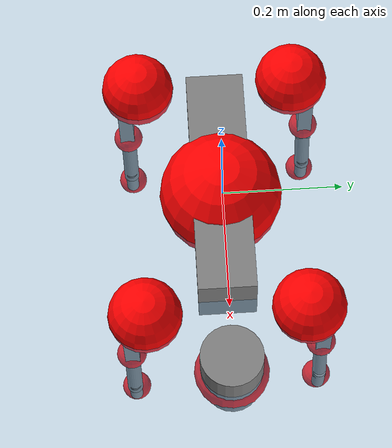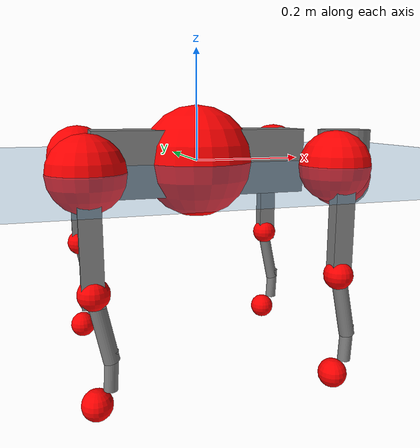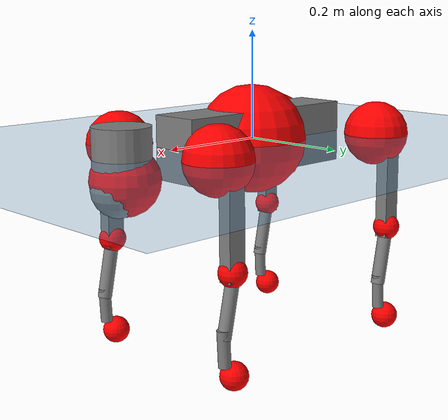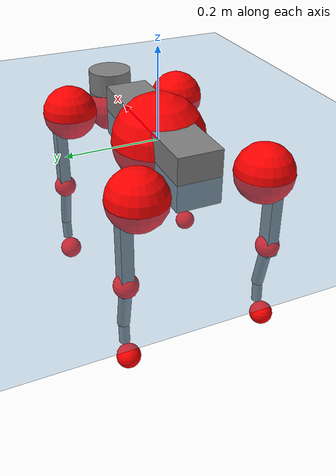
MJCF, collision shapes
<mujoco model="go2">
  <compiler angle="radian" assetdir="assets" balanceinertia="true" inertiafromgeom="false"/>

  <option timestep="0.005" density="1.2" viscosity="2e-05"/>

  <size nkey="1"/>

  <visual>
    <quality shadowsize="8192"/>
    <map shadowclip="0.5"/>
  </visual>

  <default>
    <default class="/">
      <geom contype="0" conaffinity="0" group="1" solref="-1000 -80"/>
      <site size="0.01 0.005 0.005" group="5"/>
      <general forcelimited="true" biastype="affine" gainprm="20" biasprm="0 -20 -0.5"/>
      <default class="go2">
        <joint armature="0.01" damping="0.01" frictionloss="0.2"/>
        <geom condim="1" margin="0.001"/>
        <default class="visual">
          <geom type="mesh" group="2"/>
        </default>
        <default class="collision">
          <geom group="3"/>
          <default class="foot">
            <geom size="0.022 0 0" condim="6" priority="1" friction="0.8 0.02 0.01" solimp="0.015 1 0.022"/>
          </default>
        </default>
        <default class="reward_collision_sphere">
          <geom group="5" rgba="1 0 0 1"/>
        </default>
      </default>
    </default>
  </default>

  <asset>
    <texture type="skybox" colorspace="auto" name="//unnamed_texture_0" builtin="gradient" rgb1="0.95 0.95 0.95" rgb2="0.95 0.95 0.95" width="100" height="600"/>
    <texture type="2d" colorspace="auto" name="texplane" builtin="checker" rgb1="0.345 0.575 0.748" rgb2="0.345 0.575 0.748" markrgb="1 1 1" width="512" height="512"/>
    <material name="MatPlane" class="/" texture="texplane" texuniform="true" texrepeat="2 2" specular="0.9"/>
    <material name="metal" class="/" rgba="0.9 0.95 0.95 1"/>
    <material name="black" class="/" rgba="0 0 0 1"/>
    <material name="white" class="/"/>
    <material name="gray" class="/" rgba="0.671705 0.692426 0.77427 1"/>
    <mesh name="base_0" class="/" file="base_0.obj"/>
    <mesh name="base_1" class="/" file="base_1.obj"/>
    <mesh name="base_2" class="/" file="base_2.obj"/>
    <mesh name="base_3" class="/" file="base_3.obj"/>
    <mesh name="base_4" class="/" file="base_4.obj"/>
    <mesh name="hip_0" class="/" file="hip_0.obj"/>
    <mesh name="hip_1" class="/" file="hip_1.obj"/>
    <mesh name="thigh_0" class="/" file="thigh_0.obj"/>
    <mesh name="thigh_1" class="/" file="thigh_1.obj"/>
    <mesh name="thigh_mirror_0" class="/" file="thigh_mirror_0.obj"/>
    <mesh name="thigh_mirror_1" class="/" file="thigh_mirror_1.obj"/>
    <mesh name="calf_0" class="/" file="calf_0.obj"/>
    <mesh name="calf_1" class="/" file="calf_1.obj"/>
    <mesh name="calf_mirror_0" class="/" file="calf_mirror_0.obj"/>
    <mesh name="calf_mirror_1" class="/" file="calf_mirror_1.obj"/>
    <mesh name="foot" class="/" file="foot.obj"/>
  </asset>

  <worldbody>
    <geom name="floor" class="/" size="100 100 0.125" type="plane" group="0" material="MatPlane"/>
    <light name="toplight_shadow" class="/" pos="0 0 5" dir="0.0990148 0.0990148 -0.990148" type="directional" ambient="0.04 0.04 0.04" diffuse="0.55 0.55 0.55" specular="0.12 0.12 0.12"/>
    <light name="toplight_fill" class="/" pos="0 0 5" dir="0.0990148 0.0990148 -0.990148" type="directional" castshadow="false" ambient="0.04 0.04 0.04" diffuse="0.3 0.3 0.3" specular="0.08 0.08 0.08"/>
    <body name="trunk" childclass="go2" pos="-0.000514927 -0.00236943 -0.000964257" quat="1 -6.06825e-05 1.7648e-05 -1.61831e-05">
      <inertial pos="0.0241112 -0.00225324 -0.00481128" quat="-0.00140466 0.713649 -0.00205363 0.700499" mass="7.22856" diaginertia="0.142158 0.176916 0.0113321"/>
      <joint name="//unnamed_joint_0" type="free" armature="0" damping="0" frictionloss="0"/>
      <geom name="//unnamed_geom_1" class="visual" material="black" mesh="base_0"/>
      <geom name="//unnamed_geom_2" class="visual" material="black" mesh="base_1"/>
      <geom name="//unnamed_geom_3" class="visual" material="black" mesh="base_2"/>
      <geom name="//unnamed_geom_4" class="visual" material="white" mesh="base_3"/>
      <geom name="//unnamed_geom_5" class="visual" material="gray" mesh="base_4"/>
      <geom name="trunk_1" class="collision" size="0.191484 0.0475911 0.0580255" type="box"/>
      <geom name="trunk_2" class="collision" size="0.0508995 0.0458096" pos="0.303663 0 0.00857898" type="cylinder"/>
      <geom name="trunk_3" class="collision" size="0.0478455" pos="0.312187 0 -0.0514739"/>
      <geom name="//unnamed_geom_9" class="reward_collision_sphere" size="0.101799"/>
      <geom name="//unnamed_geom_10" class="reward_collision_sphere" size="0.0610794" pos="0.298335 0 -0.0386054"/>
      <site name="imu" pos="-0.0148444 0.0141203 0.024431" size="0.0101799"/>
      <camera name="track" pos="0 -2.26118 0" quat="0.707107 0.707107 0 0" mode="trackcom"/>
      <camera name="ego_camera" pos="0.332431 0 0.0386054" quat="-0.5 -0.5 0.5 0.5"/>
      <body name="FL_hip" pos="0.208414 0.0525184 0.000981546" quat="1 -4.7502e-05 0.000411723 0.00083093">
        <inertial pos="-0.00541949 0.00227967 0.00246176" quat="0.49825 0.495576 0.506485 0.499625" mass="0.69776" diaginertia="0.00121359 0.00106871 0.000221346"/>
        <joint name="FL_hip_joint" pos="0 0 0" axis="0.999956 -0.000597439 0.00934816" stiffness="0.00562745" range="-1.05184 1.10388" armature="0.0105396" damping="0.000138181" frictionloss="0.231592"/>
        <geom name="//unnamed_geom_11" class="visual" material="metal" mesh="hip_0"/>
        <geom name="//unnamed_geom_12" class="visual" material="gray" mesh="hip_1"/>
        <geom name="//unnamed_geom_13" class="collision" size="0.0468276 0.0203598" pos="0 0.0904472 0" quat="0.707107 0.707107 0 0" type="cylinder"/>
        <geom name="//unnamed_geom_14" class="reward_collision_sphere" size="0.0610794" pos="0 0.0791413 0"/>
        <body name="FL_thigh" pos="-0.00144357 0.108001 -0.000245384" quat="0.999999 0.00047201 0.00101371 0.00096919">
          <inertial pos="-0.00131872 -0.0223378 -0.0281036" quat="0.833988 0.082259 -0.02325 0.54512" mass="1.21436" diaginertia="0.00798359 0.0106374 0.000395633"/>
          <joint name="FL_thigh_joint" pos="0 0 0" axis="0.0124303 0.999898 0.00702304" stiffness="0.0033405" range="-1.51477 3.51174" armature="0.0112581" damping="0.00538866" frictionloss="0.225377"/>
          <geom name="//unnamed_geom_15" class="visual" material="metal" mesh="thigh_0"/>
          <geom name="//unnamed_geom_16" class="visual" material="gray" mesh="thigh_1"/>
          <geom name="//unnamed_geom_17" class="collision" size="0.108416 0.0124704 0.0173058" pos="0 0 -0.0913662" quat="0.707107 0 0.707107 0" type="box"/>
          <body name="FL_calf" pos="-0.00201765 -0.00126133 -0.18494" quat="0.999999 0.000417237 -0.0013736 -2.78498e-05">
            <inertial pos="0.00949015 -0.000499018 -0.121327" quat="0.709372 -0.000191982 -0.00426742 0.704821" mass="0.258306" diaginertia="0.00199632 0.00275104 2.4635e-05"/>
            <joint name="FL_calf_joint" pos="0 0 0" axis="-0.00845903 0.999958 0.00347062" stiffness="0.00131699" range="-2.73215 -0.831156" armature="0.00874804" damping="0.00590472" frictionloss="0.204548"/>
            <geom name="//unnamed_geom_18" class="visual" material="gray" mesh="calf_0"/>
            <geom name="//unnamed_geom_19" class="visual" material="black" mesh="calf_1"/>
            <geom name="FL_calf0" class="collision" size="0.0122159 0.0610794" pos="0.00852387 0 -0.0514739" quat="0.994493 0 -0.104807 0" type="cylinder"/>
            <geom name="//unnamed_geom_21" class="collision" size="0.0111979 0.0330847" pos="0.0213097 0 -0.126969" quat="0.999688 0 0.0249974 0" type="cylinder"/>
            <geom name="//unnamed_geom_22" class="visual" pos="0 0 -0.182732" quat="1 0 0 0" material="black" mesh="foot"/>
            <geom name="FL_foot" class="foot" size="0.0163013" pos="-0.00213097 0 -0.182732"/>
            <geom name="//unnamed_geom_24" class="reward_collision_sphere" size="0.0254498"/>
            <geom name="//unnamed_geom_25" class="reward_collision_sphere" size="0.0254498" pos="-0.00213097 0 -0.182732"/>
            <site name="FL_foot" class="foot" pos="-0.00213097 0 -0.182732" size="0.0101799"/>
          </body>
        </body>
      </body>
      <body name="FR_hip" pos="0.207094 -0.0555086 -0.00231197" quat="1 -0.00048443 -8.04207e-05 -0.000233091">
        <inertial pos="-0.00725618 -0.00217607 0.00103383" quat="0.496997 0.507415 0.495752 0.499754" mass="0.691305" diaginertia="0.00117461 0.00108953 0.000226445"/>
        <joint name="FR_hip_joint" pos="0 0 0" axis="0.999903 0.00521545 0.0129217" range="-1.04747 1.07153" armature="0.010919" damping="0.0123795" frictionloss="0.22424"/>
        <geom name="//unnamed_geom_26" class="visual" pos="0 2.37557e-09 1.01893e-07" quat="4.63268e-05 1 0 0" material="metal" mesh="hip_0"/>
        <geom name="//unnamed_geom_27" class="visual" pos="0 3.85109e-09 -2.52021e-07" quat="4.63268e-05 1 0 0" material="gray" mesh="hip_1"/>
        <geom name="//unnamed_geom_28" class="collision" size="0.0468276 0.0203598" pos="0 -0.0904472 0" quat="0.707107 0.707107 0 0" type="cylinder"/>
        <geom name="//unnamed_geom_29" class="reward_collision_sphere" size="0.0610794" pos="0 -0.0791413 0"/>
        <body name="FR_thigh" pos="0.000880817 -0.108064 0.000422596" quat="0.999999 -0.00120182 0.000267449 -0.000720109">
          <inertial pos="-0.00579458 0.0249421 -0.0270663" quat="0.553546 -0.0205347 0.0707714 0.829552" mass="1.28742" diaginertia="0.0082731 0.0110568 0.000407066"/>
          <joint name="FR_thigh_joint" pos="0 0 0" axis="-0.00323796 -0.999991 0.00282018" range="-3.50764 1.57049" armature="0.00975688" damping="0.0197717" frictionloss="0.202789"/>
          <geom name="//unnamed_geom_30" class="visual" material="metal" mesh="thigh_mirror_0"/>
          <geom name="//unnamed_geom_31" class="visual" material="gray" mesh="thigh_mirror_1"/>
          <geom name="//unnamed_geom_32" class="collision" size="0.108416 0.0124704 0.0173058" pos="0 0 -0.0913662" quat="0.707107 0 0.707107 0" type="box"/>
          <body name="FR_calf" pos="-0.00140822 -0.00175435 -0.184858" quat="1 -8.03698e-05 0.000662567 -0.000580109">
            <inertial pos="0.00915925 0.000692494 -0.118904" quat="0.709523 0.00138541 0.0110764 0.704594" mass="0.252143" diaginertia="0.0020687 0.00272079 2.52895e-05"/>
            <joint name="FR_calf_joint" pos="0 0 0" axis="-0.00198763 -0.999998 -0.00100735" range="0.83242 2.70305" armature="0.0106927" damping="0.0141828" frictionloss="0.184632"/>
            <geom name="//unnamed_geom_33" class="visual" material="gray" mesh="calf_mirror_0"/>
            <geom name="//unnamed_geom_34" class="visual" material="black" mesh="calf_mirror_1"/>
            <geom name="FR_calf0" class="collision" size="0.0132339 0.0610794" pos="0.0106548 0 -0.0514739" quat="0.995004 0 -0.0998334 0" type="cylinder"/>
            <geom name="//unnamed_geom_36" class="collision" size="0.0111979 0.0330847" pos="0.0213097 0 -0.126969" quat="0.999688 0 0.0249974 0" type="cylinder"/>
            <geom name="//unnamed_geom_37" class="visual" pos="0 0 -0.182732" quat="1 0 0 0" material="black" mesh="foot"/>
            <geom name="FR_foot" class="foot" size="0.0200968" pos="-0.00213097 0 -0.182732"/>
            <geom name="//unnamed_geom_39" class="reward_collision_sphere" size="0.0254498"/>
            <geom name="//unnamed_geom_40" class="reward_collision_sphere" size="0.0254498" pos="-0.00213097 0 -0.182732"/>
            <site name="FR_foot" class="foot" pos="-0.00213097 0 -0.182732" size="0.0101799"/>
          </body>
        </body>
      </body>
      <body name="RL_hip" pos="-0.20678 0.053098 0.00195001" quat="0.999999 0.000370948 0.000716018 0.000611152">
        <inertial pos="0.0063127 0.000235158 0.00275204" quat="0.504527 0.502028 0.499686 0.493695" mass="0.750766" diaginertia="0.00125617 0.00113656 0.00022849"/>
        <joint name="RL_hip_joint" pos="0 0 0" axis="-0.999595 0.0110285 -0.0262496" range="-1.03231 0.994043" armature="0.0103529" damping="0.0064458" frictionloss="0.206733"/>
        <geom name="//unnamed_geom_41" class="visual" pos="-1.8084e-09 0 -3.54487e-07" quat="4.63268e-05 0 1 0" material="metal" mesh="hip_0"/>
        <geom name="//unnamed_geom_42" class="visual" pos="-2.93162e-09 0 -3.1438e-07" quat="4.63268e-05 0 1 0" material="gray" mesh="hip_1"/>
        <geom name="//unnamed_geom_43" class="collision" size="0.0468276 0.0203598" pos="0 0.0904472 0" quat="0.707107 0.707107 0 0" type="cylinder"/>
        <geom name="//unnamed_geom_44" class="reward_collision_sphere" size="0.0610794" pos="0 0.0791413 0"/>
        <body name="RL_thigh" pos="-0.00242937 0.107821 -0.000253901" quat="1 -3.04653e-05 0.000165897 -0.00019403">
          <inertial pos="-0.00338917 -0.0239521 -0.0291522" quat="0.828721 0.0974738 -0.026108 0.55049" mass="1.24783" diaginertia="0.00826856 0.0114181 0.000424402"/>
          <joint name="RL_thigh_joint" pos="0 0 0" axis="-0.00827554 0.999941 0.00709477" stiffness="0.0047146" range="-0.570675 4.59448" armature="0.00915017" damping="0" frictionloss="0.213413"/>
          <geom name="//unnamed_geom_45" class="visual" material="metal" mesh="thigh_0"/>
          <geom name="//unnamed_geom_46" class="visual" material="gray" mesh="thigh_1"/>
          <geom name="//unnamed_geom_47" class="collision" size="0.108416 0.0124704 0.0173058" pos="0 0 -0.0913662" quat="0.707107 0 0.707107 0" type="box"/>
          <body name="RL_calf" pos="-0.00178127 -0.000356792 -0.18167" quat="1 0.00016049 0.00013842 -0.000279195">
            <inertial pos="0.00762111 -5.82465e-05 -0.120771" quat="0.708184 0.00316272 -0.00165719 0.706019" mass="0.272902" diaginertia="0.00216448 0.00283314 2.55231e-05"/>
            <joint name="RL_calf_joint" pos="0 0 0" axis="0.0065947 0.99992 0.010781" stiffness="0.00256242" range="-2.71419 -0.885555" armature="0.00986441" damping="0" frictionloss="0.203993"/>
            <geom name="//unnamed_geom_48" class="visual" material="gray" mesh="calf_0"/>
            <geom name="//unnamed_geom_49" class="visual" material="black" mesh="calf_1"/>
            <geom name="RL_calf0" class="collision" size="0.0132339 0.0610794" pos="0.0106548 0 -0.0514739" quat="0.995004 0 -0.0998334 0" type="cylinder"/>
            <geom name="//unnamed_geom_51" class="collision" size="0.0111979 0.0330847" pos="0.0213097 0 -0.126969" quat="0.999688 0 0.0249974 0" type="cylinder"/>
            <geom name="//unnamed_geom_52" class="visual" pos="0 0 -0.182732" quat="1 0 0 0" material="black" mesh="foot"/>
            <geom name="RL_foot" class="foot" size="0.0217606" pos="-0.00213097 0 -0.182732"/>
            <geom name="//unnamed_geom_54" class="reward_collision_sphere" size="0.0254498"/>
            <geom name="//unnamed_geom_55" class="reward_collision_sphere" size="0.0254498" pos="-0.00213097 0 -0.182732"/>
            <site name="RL_foot" class="foot" pos="-0.00213097 0 -0.182732" size="0.0101799"/>
          </body>
        </body>
      </body>
      <body name="RR_hip" pos="-0.20553 -0.0516446 -0.00269257" quat="1 -0.000270271 0.000262042 0.00073455">
        <inertial pos="0.00656341 -0.00013815 -0.00305304" quat="0.495693 0.498253 0.501106 0.504901" mass="0.732372" diaginertia="0.00129558 0.00117072 0.000234378"/>
        <joint name="RR_hip_joint" pos="0 0 0" axis="-0.999988 -0.00487403 0.000487685" stiffness="0.011684" range="-1.03219 1.02127" armature="0.0102727" damping="0.00396981" frictionloss="0.194847"/>
        <geom name="//unnamed_geom_56" class="visual" pos="1.81065e-09 2.37557e-09 -4.5638e-07" quat="2.14617e-09 4.63268e-05 4.63268e-05 -1" material="metal" mesh="hip_0"/>
        <geom name="//unnamed_geom_57" class="visual" pos="2.92605e-09 3.85109e-09 -6.23586e-08" quat="2.14617e-09 4.63268e-05 4.63268e-05 -1" material="gray" mesh="hip_1"/>
        <geom name="//unnamed_geom_58" class="collision" size="0.0468276 0.0203598" pos="0 -0.0904472 0" quat="0.707107 0.707107 0 0" type="cylinder"/>
        <geom name="//unnamed_geom_59" class="reward_collision_sphere" size="0.0610794" pos="0 -0.0791413 0"/>
        <body name="RR_thigh" pos="-2.4251e-05 -0.105661 0.00157515" quat="1 -0.000762324 0.000559441 5.95596e-05">
          <inertial pos="-0.00361606 0.0238727 -0.0253091" quat="0.553681 -0.0215008 0.0853965 0.828059" mass="1.15889" diaginertia="0.00778389 0.0103241 0.000393251"/>
          <joint name="RR_thigh_joint" pos="0 0 0" axis="0.00239101 -0.999997 0.000854006" range="-4.54343 0.581851" armature="0.0106853" damping="0.00613252" frictionloss="0.204347"/>
          <geom name="//unnamed_geom_60" class="visual" material="metal" mesh="thigh_mirror_0"/>
          <geom name="//unnamed_geom_61" class="visual" material="gray" mesh="thigh_mirror_1"/>
          <geom name="//unnamed_geom_62" class="collision" size="0.108416 0.0124704 0.0173058" pos="0 0 -0.0913662" quat="0.707107 0 0.707107 0" type="box"/>
          <body name="RR_calf" pos="0.00113236 0.000951472 -0.181062" quat="0.999999 -0.000988781 0.000196834 -0.000811707">
            <inertial pos="0.00631914 0.000873261 -0.122375" quat="0.699367 -0.0138704 -0.000199337 0.714628" mass="0.258145" diaginertia="0.00208206 0.00265601 2.48483e-05"/>
            <joint name="RR_calf_joint" pos="0 0 0" axis="-0.00113734 -0.999999 0.00088259" range="0.79208 2.7476" armature="0.00943117" damping="0.0121497" frictionloss="0.206248"/>
            <geom name="//unnamed_geom_63" class="visual" material="gray" mesh="calf_mirror_0"/>
            <geom name="//unnamed_geom_64" class="visual" material="black" mesh="calf_mirror_1"/>
            <geom name="RR_calf0" class="collision" size="0.0132339 0.0610794" pos="0.0106548 0 -0.0514739" quat="0.995004 0 -0.0998334 0" type="cylinder"/>
            <geom name="//unnamed_geom_66" class="collision" size="0.0111979 0.0330847" pos="0.0213097 0 -0.126969" quat="0.999688 0 0.0249974 0" type="cylinder"/>
            <geom name="//unnamed_geom_67" class="visual" pos="0 0 -0.182732" quat="1 0 0 0" material="black" mesh="foot"/>
            <geom name="RR_foot" class="foot" size="0.0202309" pos="-0.00213097 0 -0.182732"/>
            <geom name="//unnamed_geom_69" class="reward_collision_sphere" size="0.0254498"/>
            <geom name="//unnamed_geom_70" class="reward_collision_sphere" size="0.0254498" pos="-0.00213097 0 -0.182732"/>
            <site name="RR_foot" class="foot" pos="-0.00213097 0 -0.182732" size="0.0101799"/>
          </body>
        </body>
      </body>
    </body>
  </worldbody>

  <contact>
    <pair class="/" geom1="floor" geom2="FL_foot" name="//unnamed_contact_0"/>
    <pair class="/" geom1="floor" geom2="FR_foot" name="//unnamed_contact_1"/>
    <pair class="/" geom1="floor" geom2="RL_foot" name="//unnamed_contact_2"/>
    <pair class="/" geom1="floor" geom2="RR_foot" name="//unnamed_contact_3"/>
  </contact>

  <actuator>
    <general name="FL_hip" class="/" joint="FL_hip_joint" forcerange="-24.114 24.114" gainprm="20.9472" biasprm="0 -20.9472 -0.535244"/>
    <general name="FL_thigh" class="/" joint="FL_thigh_joint" forcerange="-21.6344 21.6344" gainprm="20.9472" biasprm="0 -20.9472 -0.535244"/>
    <general name="FL_calf" class="/" joint="FL_calf_joint" forcerange="-43.3453 43.3453" gainprm="20.9472" biasprm="0 -20.9472 -0.535244"/>
    <general name="FR_hip" class="/" joint="FR_hip_joint" forcerange="-25.0028 25.0028" gainprm="20.9472" biasprm="0 -20.9472 -0.535244"/>
    <general name="FR_thigh" class="/" joint="FR_thigh_joint" forcerange="-24.9778 24.9778" gainprm="20.9472" biasprm="0 -20.9472 -0.535244"/>
    <general name="FR_calf" class="/" joint="FR_calf_joint" forcerange="-50.6501 50.6501" gainprm="20.9472" biasprm="0 -20.9472 -0.535244"/>
    <general name="RL_hip" class="/" joint="RL_hip_joint" forcerange="-23.3371 23.3371" gainprm="20.9472" biasprm="0 -20.9472 -0.535244"/>
    <general name="RL_thigh" class="/" joint="RL_thigh_joint" forcerange="-23.7979 23.7979" gainprm="20.9472" biasprm="0 -20.9472 -0.535244"/>
    <general name="RL_calf" class="/" joint="RL_calf_joint" forcerange="-41.2449 41.2449" gainprm="20.9472" biasprm="0 -20.9472 -0.535244"/>
    <general name="RR_hip" class="/" joint="RR_hip_joint" forcerange="-23.6799 23.6799" gainprm="20.9472" biasprm="0 -20.9472 -0.535244"/>
    <general name="RR_thigh" class="/" joint="RR_thigh_joint" forcerange="-24.615 24.615" gainprm="20.9472" biasprm="0 -20.9472 -0.535244"/>
    <general name="RR_calf" class="/" joint="RR_calf_joint" forcerange="-47.4385 47.4385" gainprm="20.9472" biasprm="0 -20.9472 -0.535244"/>
  </actuator>

  <sensor>
    <gyro site="imu" name="imu_angular_velocity"/>
    <velocimeter site="imu" name="imu_linear_velocity"/>
    <framelinvel objtype="site" objname="FL_foot" name="FL_foot_global_linear_velocity"/>
    <framelinvel objtype="site" objname="FR_foot" name="FR_foot_global_linear_velocity"/>
    <framelinvel objtype="site" objname="RL_foot" name="RL_foot_global_linear_velocity"/>
    <framelinvel objtype="site" objname="RR_foot" name="RR_foot_global_linear_velocity"/>
  </sensor>

  <keyframe>
    <key name="home" qpos="0 0 0.325 1 0 0 0 0.1 0.8 -1.5 -0.1 -0.8 1.5 -0.1 0.8 -1.5 0.1 -0.8 1.5"/>
  </keyframe>
</mujoco>
